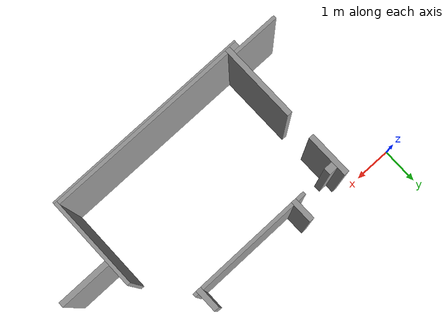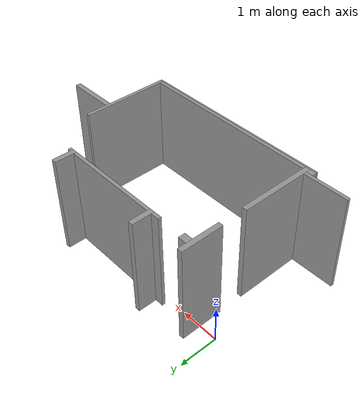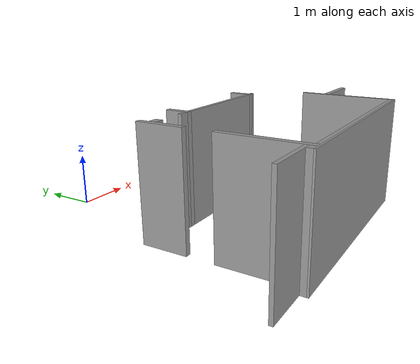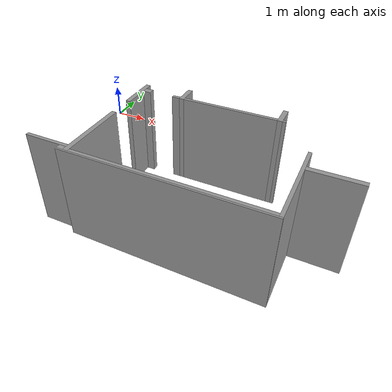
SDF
<?xml version="1.0" ?>
<sdf version="1.4">
  <model name="Robocup2014">
    <static>1</static>
    <link name="Wall_0">
      <collision name="Wall_0_Collision">
        <geometry>
          <box>
            <size>0.15000 0.65000 3.00000</size>
          </box>
        </geometry>
        <pose>2.82500 -0.32500 0 0 0 0.00000</pose>
      </collision>
      <visual name="Wall_0_Visual">
        <geometry>
          <box>
            <size>0.15000 0.65000 3.00000</size>
          </box>
        </geometry>
        <material>
          <script>
            <uri>file://media/materials/scripts/gazebo.material</uri>
            <name>Gazebo/Grey</name>
          </script>
        </material>
        <pose>2.82500 -0.32500 0 0 0 0.00000</pose>
      </visual>
    </link>
    <link name="Wall_1">
      <collision name="Wall_1_Collision">
        <geometry>
          <box>
            <size>0.15000 0.65000 3.00000</size>
          </box>
        </geometry>
        <pose>5.92500 -0.32500 0 0 0 0.00000</pose>
      </collision>
      <visual name="Wall_1_Visual">
        <geometry>
          <box>
            <size>0.15000 0.65000 3.00000</size>
          </box>
        </geometry>
        <material>
          <script>
            <uri>file://media/materials/scripts/gazebo.material</uri>
            <name>Gazebo/Grey</name>
          </script>
        </material>
        <pose>5.92500 -0.32500 0 0 0 0.00000</pose>
      </visual>
    </link>
    <link name="Wall_2">
      <collision name="Wall_2_Collision">
        <geometry>
          <box>
            <size>0.15000 1.25000 3.00000</size>
          </box>
        </geometry>
        <pose>1.42500 -0.87500 0 0 0 0.00000</pose>
      </collision>
      <visual name="Wall_2_Visual">
        <geometry>
          <box>
            <size>0.15000 1.25000 3.00000</size>
          </box>
        </geometry>
        <material>
          <script>
            <uri>file://media/materials/scripts/gazebo.material</uri>
            <name>Gazebo/Grey</name>
          </script>
        </material>
        <pose>1.42500 -0.87500 0 0 0 0.00000</pose>
      </visual>
    </link>
    <link name="Wall_3">
      <collision name="Wall_3_Collision">
        <geometry>
          <box>
            <size>0.25000 0.20000 3.00000</size>
          </box>
        </geometry>
        <pose>1.62500 -0.60000 0 0 0 0.00000</pose>
      </collision>
      <visual name="Wall_3_Visual">
        <geometry>
          <box>
            <size>0.25000 0.20000 3.00000</size>
          </box>
        </geometry>
        <material>
          <script>
            <uri>file://media/materials/scripts/gazebo.material</uri>
            <name>Gazebo/Grey</name>
          </script>
        </material>
        <pose>1.62500 -0.60000 0 0 0 0.00000</pose>
      </visual>
    </link>
    <link name="Wall_4">
      <collision name="Wall_4_Collision">
        <geometry>
          <box>
            <size>0.25000 0.10000 3.00000</size>
          </box>
        </geometry>
        <pose>2.62500 -0.60000 0 0 0 0.00000</pose>
      </collision>
      <visual name="Wall_4_Visual">
        <geometry>
          <box>
            <size>0.25000 0.10000 3.00000</size>
          </box>
        </geometry>
        <material>
          <script>
            <uri>file://media/materials/scripts/gazebo.material</uri>
            <name>Gazebo/Grey</name>
          </script>
        </material>
        <pose>2.62500 -0.60000 0 0 0 0.00000</pose>
      </visual>
    </link>
    <link name="Wall_5">
      <collision name="Wall_5_Collision">
        <geometry>
          <box>
            <size>2.95000 0.10000 3.00000</size>
          </box>
        </geometry>
        <pose>4.37500 -0.60000 0 0 0 0.00000</pose>
      </collision>
      <visual name="Wall_5_Visual">
        <geometry>
          <box>
            <size>2.95000 0.10000 3.00000</size>
          </box>
        </geometry>
        <material>
          <script>
            <uri>file://media/materials/scripts/gazebo.material</uri>
            <name>Gazebo/Grey</name>
          </script>
        </material>
        <pose>4.37500 -0.60000 0 0 0 0.00000</pose>
      </visual>
    </link>
    <link name="Wall_6">
      <collision name="Wall_6_Collision">
        <geometry>
          <box>
            <size>0.10000 0.10000 3.00000</size>
          </box>
        </geometry>
        <pose>6.05000 -0.60000 0 0 0 0.00000</pose>
      </collision>
      <visual name="Wall_6_Visual">
        <geometry>
          <box>
            <size>0.10000 0.10000 3.00000</size>
          </box>
        </geometry>
        <material>
          <script>
            <uri>file://media/materials/scripts/gazebo.material</uri>
            <name>Gazebo/Grey</name>
          </script>
        </material>
        <pose>6.05000 -0.60000 0 0 0 0.00000</pose>
      </visual>
    </link>
    <link name="Wall_7">
      <collision name="Wall_7_Collision">
        <geometry>
          <box>
            <size>0.10000 2.65000 3.00000</size>
          </box>
        </geometry>
        <pose>7.05000 -3.17500 0 0 0 0.00000</pose>
      </collision>
      <visual name="Wall_7_Visual">
        <geometry>
          <box>
            <size>0.10000 2.65000 3.00000</size>
          </box>
        </geometry>
        <material>
          <script>
            <uri>file://media/materials/scripts/gazebo.material</uri>
            <name>Gazebo/Grey</name>
          </script>
        </material>
        <pose>7.05000 -3.17500 0 0 0 0.00000</pose>
      </visual>
    </link>
    <link name="Wall_8">
      <collision name="Wall_8_Collision">
        <geometry>
          <box>
            <size>0.15000 2.25000 3.00000</size>
          </box>
        </geometry>
        <pose>1.42500 -3.37500 0 0 0 0.00000</pose>
      </collision>
      <visual name="Wall_8_Visual">
        <geometry>
          <box>
            <size>0.15000 2.25000 3.00000</size>
          </box>
        </geometry>
        <material>
          <script>
            <uri>file://media/materials/scripts/gazebo.material</uri>
            <name>Gazebo/Grey</name>
          </script>
        </material>
        <pose>1.42500 -3.37500 0 0 0 0.00000</pose>
      </visual>
    </link>
    <link name="Wall_9">
      <collision name="Wall_9_Collision">
        <geometry>
          <box>
            <size>1.45000 0.15000 3.00000</size>
          </box>
        </geometry>
        <pose>7.82500 -2.57500 0 0 0 0.00000</pose>
      </collision>
      <visual name="Wall_9_Visual">
        <geometry>
          <box>
            <size>1.45000 0.15000 3.00000</size>
          </box>
        </geometry>
        <material>
          <script>
            <uri>file://media/materials/scripts/gazebo.material</uri>
            <name>Gazebo/Grey</name>
          </script>
        </material>
        <pose>7.82500 -2.57500 0 0 0 0.00000</pose>
      </visual>
    </link>
    <link name="Wall_10">
      <collision name="Wall_10_Collision">
        <geometry>
          <box>
            <size>1.35000 0.10000 3.00000</size>
          </box>
        </geometry>
        <pose>0.67500 -4.30000 0 0 0 0.00000</pose>
      </collision>
      <visual name="Wall_10_Visual">
        <geometry>
          <box>
            <size>1.35000 0.10000 3.00000</size>
          </box>
        </geometry>
        <material>
          <script>
            <uri>file://media/materials/scripts/gazebo.material</uri>
            <name>Gazebo/Grey</name>
          </script>
        </material>
        <pose>0.67500 -4.30000 0 0 0 0.00000</pose>
      </visual>
    </link>
    <link name="Wall_11">
      <collision name="Wall_11_Collision">
        <geometry>
          <box>
            <size>0.20000 0.15000 3.00000</size>
          </box>
        </geometry>
        <pose>1.25000 -4.42500 0 0 0 0.00000</pose>
      </collision>
      <visual name="Wall_11_Visual">
        <geometry>
          <box>
            <size>0.20000 0.15000 3.00000</size>
          </box>
        </geometry>
        <material>
          <script>
            <uri>file://media/materials/scripts/gazebo.material</uri>
            <name>Gazebo/Grey</name>
          </script>
        </material>
        <pose>1.25000 -4.42500 0 0 0 0.00000</pose>
      </visual>
    </link>
    <link name="Wall_12">
      <collision name="Wall_12_Collision">
        <geometry>
          <box>
            <size>5.50000 0.10000 3.00000</size>
          </box>
        </geometry>
        <pose>4.25000 -4.45000 0 0 0 0.00000</pose>
      </collision>
      <visual name="Wall_12_Visual">
        <geometry>
          <box>
            <size>5.50000 0.10000 3.00000</size>
          </box>
        </geometry>
        <material>
          <script>
            <uri>file://media/materials/scripts/gazebo.material</uri>
            <name>Gazebo/Grey</name>
          </script>
        </material>
        <pose>4.25000 -4.45000 0 0 0 0.00000</pose>
      </visual>
    </link>
    <link name="Wall_13">
      <collision name="Wall_13_Collision">
        <geometry>
          <box>
            <size>5.95000 0.05000 3.00000</size>
          </box>
        </geometry>
        <pose>4.12500 -4.52500 0 0 0 0.00000</pose>
      </collision>
      <visual name="Wall_13_Visual">
        <geometry>
          <box>
            <size>5.95000 0.05000 3.00000</size>
          </box>
        </geometry>
        <material>
          <script>
            <uri>file://media/materials/scripts/gazebo.material</uri>
            <name>Gazebo/Grey</name>
          </script>
        </material>
        <pose>4.12500 -4.52500 0 0 0 0.00000</pose>
      </visual>
    </link>
  </model>
</sdf>
